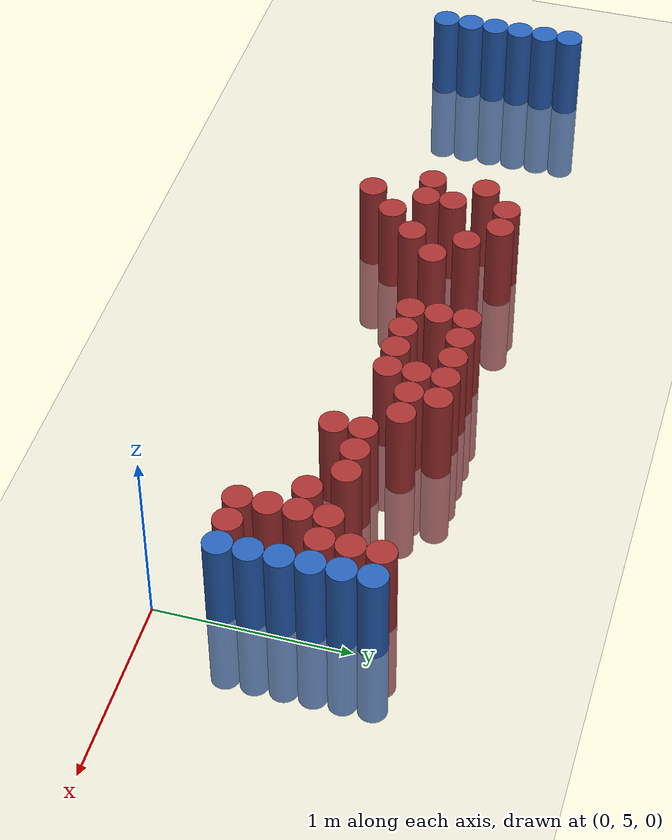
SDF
<sdf version="1.6">
 <world name="default">
  <model name="ground_plane">
   <static>1</static>
   <link name="link">
    <collision name="collision">
     <geometry><plane><normal>0 0 1</normal><size>100 100</size></plane></geometry>
     <surface><friction><ode><mu>100</mu><mu2>50</mu2></ode></friction></surface>
    </collision>
    <visual name="visual">
     <cast_shadows>0</cast_shadows>
     <geometry><plane><normal>0 0 1</normal><size>100 100</size></plane></geometry>
     <material>
      <script><uri>file://media/materials/scripts/gazebo.material</uri><name>Gazebo/Grey</name></script>
     </material>
    </visual>
   </link>
  </model>
  <model name="unit_cylinder_97">
   <static>1</static>
   <pose>-4.425000 5.325000 0.000000 0.000000 0.000000 0.000000</pose>
   <link name="link">
    <inertial>
     <mass>1</mass>
     <inertia><ixx>0.145833</ixx><ixy>0</ixy><ixz>0</ixz><iyy>0.145833</iyy><iyz>0</iyz><izz>0.125</izz></inertia>
    </inertial>
    <collision name="collision">
     <geometry><cylinder><radius>0.075000</radius><length>1</length></cylinder></geometry>
    </collision>
    <visual name="visual">
     <geometry><cylinder><radius>0.075000</radius><length>1</length></cylinder></geometry>
     <material>
      <ambient>0.152000 0.379000 0.720000 1</ambient>
      <diffuse>0.152000 0.379000 0.720000 1</diffuse>
     </material>
     <material>
      <script><name>Gazebo/Grey</name><uri>file://media/materials/scripts/gazebo.material</uri></script>
     </material>
    </visual>
   </link>
  </model>
  <model name="unit_cylinder_98">
   <static>1</static>
   <pose>-4.425000 5.475000 0.000000 0.000000 0.000000 0.000000</pose>
   <link name="link">
    <inertial>
     <mass>1</mass>
     <inertia><ixx>0.145833</ixx><ixy>0</ixy><ixz>0</ixz><iyy>0.145833</iyy><iyz>0</iyz><izz>0.125</izz></inertia>
    </inertial>
    <collision name="collision">
     <geometry><cylinder><radius>0.075000</radius><length>1</length></cylinder></geometry>
    </collision>
    <visual name="visual">
     <geometry><cylinder><radius>0.075000</radius><length>1</length></cylinder></geometry>
     <material>
      <ambient>0.152000 0.379000 0.720000 1</ambient>
      <diffuse>0.152000 0.379000 0.720000 1</diffuse>
     </material>
     <material>
      <script><name>Gazebo/Grey</name><uri>file://media/materials/scripts/gazebo.material</uri></script>
     </material>
    </visual>
   </link>
  </model>
  <model name="unit_cylinder_99">
   <static>1</static>
   <pose>-4.425000 5.625000 0.000000 0.000000 0.000000 0.000000</pose>
   <link name="link">
    <inertial>
     <mass>1</mass>
     <inertia><ixx>0.145833</ixx><ixy>0</ixy><ixz>0</ixz><iyy>0.145833</iyy><iyz>0</iyz><izz>0.125</izz></inertia>
    </inertial>
    <collision name="collision">
     <geometry><cylinder><radius>0.075000</radius><length>1</length></cylinder></geometry>
    </collision>
    <visual name="visual">
     <geometry><cylinder><radius>0.075000</radius><length>1</length></cylinder></geometry>
     <material>
      <ambient>0.152000 0.379000 0.720000 1</ambient>
      <diffuse>0.152000 0.379000 0.720000 1</diffuse>
     </material>
     <material>
      <script><name>Gazebo/Grey</name><uri>file://media/materials/scripts/gazebo.material</uri></script>
     </material>
    </visual>
   </link>
  </model>
  <model name="unit_cylinder_100">
   <static>1</static>
   <pose>-4.425000 5.775000 0.000000 0.000000 0.000000 0.000000</pose>
   <link name="link">
    <inertial>
     <mass>1</mass>
     <inertia><ixx>0.145833</ixx><ixy>0</ixy><ixz>0</ixz><iyy>0.145833</iyy><iyz>0</iyz><izz>0.125</izz></inertia>
    </inertial>
    <collision name="collision">
     <geometry><cylinder><radius>0.075000</radius><length>1</length></cylinder></geometry>
    </collision>
    <visual name="visual">
     <geometry><cylinder><radius>0.075000</radius><length>1</length></cylinder></geometry>
     <material>
      <ambient>0.152000 0.379000 0.720000 1</ambient>
      <diffuse>0.152000 0.379000 0.720000 1</diffuse>
     </material>
     <material>
      <script><name>Gazebo/Grey</name><uri>file://media/materials/scripts/gazebo.material</uri></script>
     </material>
    </visual>
   </link>
  </model>
  <model name="unit_cylinder_101">
   <static>1</static>
   <pose>-4.425000 5.925000 0.000000 0.000000 0.000000 0.000000</pose>
   <link name="link">
    <inertial>
     <mass>1</mass>
     <inertia><ixx>0.145833</ixx><ixy>0</ixy><ixz>0</ixz><iyy>0.145833</iyy><iyz>0</iyz><izz>0.125</izz></inertia>
    </inertial>
    <collision name="collision">
     <geometry><cylinder><radius>0.075000</radius><length>1</length></cylinder></geometry>
    </collision>
    <visual name="visual">
     <geometry><cylinder><radius>0.075000</radius><length>1</length></cylinder></geometry>
     <material>
      <ambient>0.152000 0.379000 0.720000 1</ambient>
      <diffuse>0.152000 0.379000 0.720000 1</diffuse>
     </material>
     <material>
      <script><name>Gazebo/Grey</name><uri>file://media/materials/scripts/gazebo.material</uri></script>
     </material>
    </visual>
   </link>
  </model>
  <model name="unit_cylinder_102">
   <static>1</static>
   <pose>-4.425000 6.075000 0.000000 0.000000 0.000000 0.000000</pose>
   <link name="link">
    <inertial>
     <mass>1</mass>
     <inertia><ixx>0.145833</ixx><ixy>0</ixy><ixz>0</ixz><iyy>0.145833</iyy><iyz>0</iyz><izz>0.125</izz></inertia>
    </inertial>
    <collision name="collision">
     <geometry><cylinder><radius>0.075000</radius><length>1</length></cylinder></geometry>
    </collision>
    <visual name="visual">
     <geometry><cylinder><radius>0.075000</radius><length>1</length></cylinder></geometry>
     <material>
      <ambient>0.152000 0.379000 0.720000 1</ambient>
      <diffuse>0.152000 0.379000 0.720000 1</diffuse>
     </material>
     <material>
      <script><name>Gazebo/Grey</name><uri>file://media/materials/scripts/gazebo.material</uri></script>
     </material>
    </visual>
   </link>
  </model>
  <model name="unit_cylinder_167">
   <static>1</static>
   <pose>-2.925000 5.625000 0.000000 0.000000 0.000000 0.000000</pose>
   <link name="link">
    <inertial>
     <mass>1</mass>
     <inertia><ixx>0.145833</ixx><ixy>0</ixy><ixz>0</ixz><iyy>0.145833</iyy><iyz>0</iyz><izz>0.125</izz></inertia>
    </inertial>
    <collision name="collision">
     <geometry><cylinder><radius>0.075000</radius><length>1</length></cylinder></geometry>
    </collision>
    <visual name="visual">
     <geometry><cylinder><radius>0.075000</radius><length>1</length></cylinder></geometry>
     <material>
      <ambient>0.648000 0.192000 0.192000 1</ambient>
      <diffuse>0.648000 0.192000 0.192000 1</diffuse>
     </material>
     <material>
      <script><name>Gazebo/Grey</name><uri>file://media/materials/scripts/gazebo.material</uri></script>
     </material>
    </visual>
   </link>
  </model>
  <model name="unit_cylinder_168">
   <static>1</static>
   <pose>-2.925000 5.925000 0.000000 0.000000 0.000000 0.000000</pose>
   <link name="link">
    <inertial>
     <mass>1</mass>
     <inertia><ixx>0.145833</ixx><ixy>0</ixy><ixz>0</ixz><iyy>0.145833</iyy><iyz>0</iyz><izz>0.125</izz></inertia>
    </inertial>
    <collision name="collision">
     <geometry><cylinder><radius>0.075000</radius><length>1</length></cylinder></geometry>
    </collision>
    <visual name="visual">
     <geometry><cylinder><radius>0.075000</radius><length>1</length></cylinder></geometry>
     <material>
      <ambient>0.648000 0.192000 0.192000 1</ambient>
      <diffuse>0.648000 0.192000 0.192000 1</diffuse>
     </material>
     <material>
      <script><name>Gazebo/Grey</name><uri>file://media/materials/scripts/gazebo.material</uri></script>
     </material>
    </visual>
   </link>
  </model>
  <model name="unit_cylinder_172">
   <static>1</static>
   <pose>-2.775000 5.325000 0.000000 0.000000 0.000000 0.000000</pose>
   <link name="link">
    <inertial>
     <mass>1</mass>
     <inertia><ixx>0.145833</ixx><ixy>0</ixy><ixz>0</ixz><iyy>0.145833</iyy><iyz>0</iyz><izz>0.125</izz></inertia>
    </inertial>
    <collision name="collision">
     <geometry><cylinder><radius>0.075000</radius><length>1</length></cylinder></geometry>
    </collision>
    <visual name="visual">
     <geometry><cylinder><radius>0.075000</radius><length>1</length></cylinder></geometry>
     <material>
      <ambient>0.648000 0.192000 0.192000 1</ambient>
      <diffuse>0.648000 0.192000 0.192000 1</diffuse>
     </material>
     <material>
      <script><name>Gazebo/Grey</name><uri>file://media/materials/scripts/gazebo.material</uri></script>
     </material>
    </visual>
   </link>
  </model>
  <model name="unit_cylinder_173">
   <static>1</static>
   <pose>-2.775000 5.625000 0.000000 0.000000 0.000000 0.000000</pose>
   <link name="link">
    <inertial>
     <mass>1</mass>
     <inertia><ixx>0.145833</ixx><ixy>0</ixy><ixz>0</ixz><iyy>0.145833</iyy><iyz>0</iyz><izz>0.125</izz></inertia>
    </inertial>
    <collision name="collision">
     <geometry><cylinder><radius>0.075000</radius><length>1</length></cylinder></geometry>
    </collision>
    <visual name="visual">
     <geometry><cylinder><radius>0.075000</radius><length>1</length></cylinder></geometry>
     <material>
      <ambient>0.648000 0.192000 0.192000 1</ambient>
      <diffuse>0.648000 0.192000 0.192000 1</diffuse>
     </material>
     <material>
      <script><name>Gazebo/Grey</name><uri>file://media/materials/scripts/gazebo.material</uri></script>
     </material>
    </visual>
   </link>
  </model>
  <model name="unit_cylinder_174">
   <static>1</static>
   <pose>-2.775000 5.775000 0.000000 0.000000 0.000000 0.000000</pose>
   <link name="link">
    <inertial>
     <mass>1</mass>
     <inertia><ixx>0.145833</ixx><ixy>0</ixy><ixz>0</ixz><iyy>0.145833</iyy><iyz>0</iyz><izz>0.125</izz></inertia>
    </inertial>
    <collision name="collision">
     <geometry><cylinder><radius>0.075000</radius><length>1</length></cylinder></geometry>
    </collision>
    <visual name="visual">
     <geometry><cylinder><radius>0.075000</radius><length>1</length></cylinder></geometry>
     <material>
      <ambient>0.648000 0.192000 0.192000 1</ambient>
      <diffuse>0.648000 0.192000 0.192000 1</diffuse>
     </material>
     <material>
      <script><name>Gazebo/Grey</name><uri>file://media/materials/scripts/gazebo.material</uri></script>
     </material>
    </visual>
   </link>
  </model>
  <model name="unit_cylinder_175">
   <static>1</static>
   <pose>-2.775000 6.075000 0.000000 0.000000 0.000000 0.000000</pose>
   <link name="link">
    <inertial>
     <mass>1</mass>
     <inertia><ixx>0.145833</ixx><ixy>0</ixy><ixz>0</ixz><iyy>0.145833</iyy><iyz>0</iyz><izz>0.125</izz></inertia>
    </inertial>
    <collision name="collision">
     <geometry><cylinder><radius>0.075000</radius><length>1</length></cylinder></geometry>
    </collision>
    <visual name="visual">
     <geometry><cylinder><radius>0.075000</radius><length>1</length></cylinder></geometry>
     <material>
      <ambient>0.648000 0.192000 0.192000 1</ambient>
      <diffuse>0.648000 0.192000 0.192000 1</diffuse>
     </material>
     <material>
      <script><name>Gazebo/Grey</name><uri>file://media/materials/scripts/gazebo.material</uri></script>
     </material>
    </visual>
   </link>
  </model>
  <model name="unit_cylinder_177">
   <static>1</static>
   <pose>-2.625000 5.475000 0.000000 0.000000 0.000000 0.000000</pose>
   <link name="link">
    <inertial>
     <mass>1</mass>
     <inertia><ixx>0.145833</ixx><ixy>0</ixy><ixz>0</ixz><iyy>0.145833</iyy><iyz>0</iyz><izz>0.125</izz></inertia>
    </inertial>
    <collision name="collision">
     <geometry><cylinder><radius>0.075000</radius><length>1</length></cylinder></geometry>
    </collision>
    <visual name="visual">
     <geometry><cylinder><radius>0.075000</radius><length>1</length></cylinder></geometry>
     <material>
      <ambient>0.648000 0.192000 0.192000 1</ambient>
      <diffuse>0.648000 0.192000 0.192000 1</diffuse>
     </material>
     <material>
      <script><name>Gazebo/Grey</name><uri>file://media/materials/scripts/gazebo.material</uri></script>
     </material>
    </visual>
   </link>
  </model>
  <model name="unit_cylinder_178">
   <static>1</static>
   <pose>-2.625000 6.075000 0.000000 0.000000 0.000000 0.000000</pose>
   <link name="link">
    <inertial>
     <mass>1</mass>
     <inertia><ixx>0.145833</ixx><ixy>0</ixy><ixz>0</ixz><iyy>0.145833</iyy><iyz>0</iyz><izz>0.125</izz></inertia>
    </inertial>
    <collision name="collision">
     <geometry><cylinder><radius>0.075000</radius><length>1</length></cylinder></geometry>
    </collision>
    <visual name="visual">
     <geometry><cylinder><radius>0.075000</radius><length>1</length></cylinder></geometry>
     <material>
      <ambient>0.648000 0.192000 0.192000 1</ambient>
      <diffuse>0.648000 0.192000 0.192000 1</diffuse>
     </material>
     <material>
      <script><name>Gazebo/Grey</name><uri>file://media/materials/scripts/gazebo.material</uri></script>
     </material>
    </visual>
   </link>
  </model>
  <model name="unit_cylinder_180">
   <static>1</static>
   <pose>-2.475000 5.625000 0.000000 0.000000 0.000000 0.000000</pose>
   <link name="link">
    <inertial>
     <mass>1</mass>
     <inertia><ixx>0.145833</ixx><ixy>0</ixy><ixz>0</ixz><iyy>0.145833</iyy><iyz>0</iyz><izz>0.125</izz></inertia>
    </inertial>
    <collision name="collision">
     <geometry><cylinder><radius>0.075000</radius><length>1</length></cylinder></geometry>
    </collision>
    <visual name="visual">
     <geometry><cylinder><radius>0.075000</radius><length>1</length></cylinder></geometry>
     <material>
      <ambient>0.648000 0.192000 0.192000 1</ambient>
      <diffuse>0.648000 0.192000 0.192000 1</diffuse>
     </material>
     <material>
      <script><name>Gazebo/Grey</name><uri>file://media/materials/scripts/gazebo.material</uri></script>
     </material>
    </visual>
   </link>
  </model>
  <model name="unit_cylinder_181">
   <static>1</static>
   <pose>-2.475000 5.925000 0.000000 0.000000 0.000000 0.000000</pose>
   <link name="link">
    <inertial>
     <mass>1</mass>
     <inertia><ixx>0.145833</ixx><ixy>0</ixy><ixz>0</ixz><iyy>0.145833</iyy><iyz>0</iyz><izz>0.125</izz></inertia>
    </inertial>
    <collision name="collision">
     <geometry><cylinder><radius>0.075000</radius><length>1</length></cylinder></geometry>
    </collision>
    <visual name="visual">
     <geometry><cylinder><radius>0.075000</radius><length>1</length></cylinder></geometry>
     <material>
      <ambient>0.648000 0.192000 0.192000 1</ambient>
      <diffuse>0.648000 0.192000 0.192000 1</diffuse>
     </material>
     <material>
      <script><name>Gazebo/Grey</name><uri>file://media/materials/scripts/gazebo.material</uri></script>
     </material>
    </visual>
   </link>
  </model>
  <model name="unit_cylinder_184">
   <static>1</static>
   <pose>-2.325000 5.775000 0.000000 0.000000 0.000000 0.000000</pose>
   <link name="link">
    <inertial>
     <mass>1</mass>
     <inertia><ixx>0.145833</ixx><ixy>0</ixy><ixz>0</ixz><iyy>0.145833</iyy><iyz>0</iyz><izz>0.125</izz></inertia>
    </inertial>
    <collision name="collision">
     <geometry><cylinder><radius>0.075000</radius><length>1</length></cylinder></geometry>
    </collision>
    <visual name="visual">
     <geometry><cylinder><radius>0.075000</radius><length>1</length></cylinder></geometry>
     <material>
      <ambient>0.648000 0.192000 0.192000 1</ambient>
      <diffuse>0.648000 0.192000 0.192000 1</diffuse>
     </material>
     <material>
      <script><name>Gazebo/Grey</name><uri>file://media/materials/scripts/gazebo.material</uri></script>
     </material>
    </visual>
   </link>
  </model>
  <model name="unit_cylinder_195">
   <static>1</static>
   <pose>-1.875000 5.775000 0.000000 0.000000 0.000000 0.000000</pose>
   <link name="link">
    <inertial>
     <mass>1</mass>
     <inertia><ixx>0.145833</ixx><ixy>0</ixy><ixz>0</ixz><iyy>0.145833</iyy><iyz>0</iyz><izz>0.125</izz></inertia>
    </inertial>
    <collision name="collision">
     <geometry><cylinder><radius>0.075000</radius><length>1</length></cylinder></geometry>
    </collision>
    <visual name="visual">
     <geometry><cylinder><radius>0.075000</radius><length>1</length></cylinder></geometry>
     <material>
      <ambient>0.648000 0.192000 0.192000 1</ambient>
      <diffuse>0.648000 0.192000 0.192000 1</diffuse>
     </material>
     <material>
      <script><name>Gazebo/Grey</name><uri>file://media/materials/scripts/gazebo.material</uri></script>
     </material>
    </visual>
   </link>
  </model>
  <model name="unit_cylinder_196">
   <static>1</static>
   <pose>-1.875000 5.925000 0.000000 0.000000 0.000000 0.000000</pose>
   <link name="link">
    <inertial>
     <mass>1</mass>
     <inertia><ixx>0.145833</ixx><ixy>0</ixy><ixz>0</ixz><iyy>0.145833</iyy><iyz>0</iyz><izz>0.125</izz></inertia>
    </inertial>
    <collision name="collision">
     <geometry><cylinder><radius>0.075000</radius><length>1</length></cylinder></geometry>
    </collision>
    <visual name="visual">
     <geometry><cylinder><radius>0.075000</radius><length>1</length></cylinder></geometry>
     <material>
      <ambient>0.648000 0.192000 0.192000 1</ambient>
      <diffuse>0.648000 0.192000 0.192000 1</diffuse>
     </material>
     <material>
      <script><name>Gazebo/Grey</name><uri>file://media/materials/scripts/gazebo.material</uri></script>
     </material>
    </visual>
   </link>
  </model>
  <model name="unit_cylinder_197">
   <static>1</static>
   <pose>-1.875000 6.075000 0.000000 0.000000 0.000000 0.000000</pose>
   <link name="link">
    <inertial>
     <mass>1</mass>
     <inertia><ixx>0.145833</ixx><ixy>0</ixy><ixz>0</ixz><iyy>0.145833</iyy><iyz>0</iyz><izz>0.125</izz></inertia>
    </inertial>
    <collision name="collision">
     <geometry><cylinder><radius>0.075000</radius><length>1</length></cylinder></geometry>
    </collision>
    <visual name="visual">
     <geometry><cylinder><radius>0.075000</radius><length>1</length></cylinder></geometry>
     <material>
      <ambient>0.648000 0.192000 0.192000 1</ambient>
      <diffuse>0.648000 0.192000 0.192000 1</diffuse>
     </material>
     <material>
      <script><name>Gazebo/Grey</name><uri>file://media/materials/scripts/gazebo.material</uri></script>
     </material>
    </visual>
   </link>
  </model>
  <model name="unit_cylinder_203">
   <static>1</static>
   <pose>-1.725000 5.775000 0.000000 0.000000 0.000000 0.000000</pose>
   <link name="link">
    <inertial>
     <mass>1</mass>
     <inertia><ixx>0.145833</ixx><ixy>0</ixy><ixz>0</ixz><iyy>0.145833</iyy><iyz>0</iyz><izz>0.125</izz></inertia>
    </inertial>
    <collision name="collision">
     <geometry><cylinder><radius>0.075000</radius><length>1</length></cylinder></geometry>
    </collision>
    <visual name="visual">
     <geometry><cylinder><radius>0.075000</radius><length>1</length></cylinder></geometry>
     <material>
      <ambient>0.648000 0.192000 0.192000 1</ambient>
      <diffuse>0.648000 0.192000 0.192000 1</diffuse>
     </material>
     <material>
      <script><name>Gazebo/Grey</name><uri>file://media/materials/scripts/gazebo.material</uri></script>
     </material>
    </visual>
   </link>
  </model>
  <model name="unit_cylinder_204">
   <static>1</static>
   <pose>-1.725000 6.075000 0.000000 0.000000 0.000000 0.000000</pose>
   <link name="link">
    <inertial>
     <mass>1</mass>
     <inertia><ixx>0.145833</ixx><ixy>0</ixy><ixz>0</ixz><iyy>0.145833</iyy><iyz>0</iyz><izz>0.125</izz></inertia>
    </inertial>
    <collision name="collision">
     <geometry><cylinder><radius>0.075000</radius><length>1</length></cylinder></geometry>
    </collision>
    <visual name="visual">
     <geometry><cylinder><radius>0.075000</radius><length>1</length></cylinder></geometry>
     <material>
      <ambient>0.648000 0.192000 0.192000 1</ambient>
      <diffuse>0.648000 0.192000 0.192000 1</diffuse>
     </material>
     <material>
      <script><name>Gazebo/Grey</name><uri>file://media/materials/scripts/gazebo.material</uri></script>
     </material>
    </visual>
   </link>
  </model>
  <model name="unit_cylinder_209">
   <static>1</static>
   <pose>-1.575000 5.775000 0.000000 0.000000 0.000000 0.000000</pose>
   <link name="link">
    <inertial>
     <mass>1</mass>
     <inertia><ixx>0.145833</ixx><ixy>0</ixy><ixz>0</ixz><iyy>0.145833</iyy><iyz>0</iyz><izz>0.125</izz></inertia>
    </inertial>
    <collision name="collision">
     <geometry><cylinder><radius>0.075000</radius><length>1</length></cylinder></geometry>
    </collision>
    <visual name="visual">
     <geometry><cylinder><radius>0.075000</radius><length>1</length></cylinder></geometry>
     <material>
      <ambient>0.648000 0.192000 0.192000 1</ambient>
      <diffuse>0.648000 0.192000 0.192000 1</diffuse>
     </material>
     <material>
      <script><name>Gazebo/Grey</name><uri>file://media/materials/scripts/gazebo.material</uri></script>
     </material>
    </visual>
   </link>
  </model>
  <model name="unit_cylinder_210">
   <static>1</static>
   <pose>-1.575000 6.075000 0.000000 0.000000 0.000000 0.000000</pose>
   <link name="link">
    <inertial>
     <mass>1</mass>
     <inertia><ixx>0.145833</ixx><ixy>0</ixy><ixz>0</ixz><iyy>0.145833</iyy><iyz>0</iyz><izz>0.125</izz></inertia>
    </inertial>
    <collision name="collision">
     <geometry><cylinder><radius>0.075000</radius><length>1</length></cylinder></geometry>
    </collision>
    <visual name="visual">
     <geometry><cylinder><radius>0.075000</radius><length>1</length></cylinder></geometry>
     <material>
      <ambient>0.648000 0.192000 0.192000 1</ambient>
      <diffuse>0.648000 0.192000 0.192000 1</diffuse>
     </material>
     <material>
      <script><name>Gazebo/Grey</name><uri>file://media/materials/scripts/gazebo.material</uri></script>
     </material>
    </visual>
   </link>
  </model>
  <model name="unit_cylinder_215">
   <static>1</static>
   <pose>-1.425000 5.775000 0.000000 0.000000 0.000000 0.000000</pose>
   <link name="link">
    <inertial>
     <mass>1</mass>
     <inertia><ixx>0.145833</ixx><ixy>0</ixy><ixz>0</ixz><iyy>0.145833</iyy><iyz>0</iyz><izz>0.125</izz></inertia>
    </inertial>
    <collision name="collision">
     <geometry><cylinder><radius>0.075000</radius><length>1</length></cylinder></geometry>
    </collision>
    <visual name="visual">
     <geometry><cylinder><radius>0.075000</radius><length>1</length></cylinder></geometry>
     <material>
      <ambient>0.648000 0.192000 0.192000 1</ambient>
      <diffuse>0.648000 0.192000 0.192000 1</diffuse>
     </material>
     <material>
      <script><name>Gazebo/Grey</name><uri>file://media/materials/scripts/gazebo.material</uri></script>
     </material>
    </visual>
   </link>
  </model>
  <model name="unit_cylinder_216">
   <static>1</static>
   <pose>-1.425000 5.925000 0.000000 0.000000 0.000000 0.000000</pose>
   <link name="link">
    <inertial>
     <mass>1</mass>
     <inertia><ixx>0.145833</ixx><ixy>0</ixy><ixz>0</ixz><iyy>0.145833</iyy><iyz>0</iyz><izz>0.125</izz></inertia>
    </inertial>
    <collision name="collision">
     <geometry><cylinder><radius>0.075000</radius><length>1</length></cylinder></geometry>
    </collision>
    <visual name="visual">
     <geometry><cylinder><radius>0.075000</radius><length>1</length></cylinder></geometry>
     <material>
      <ambient>0.648000 0.192000 0.192000 1</ambient>
      <diffuse>0.648000 0.192000 0.192000 1</diffuse>
     </material>
     <material>
      <script><name>Gazebo/Grey</name><uri>file://media/materials/scripts/gazebo.material</uri></script>
     </material>
    </visual>
   </link>
  </model>
  <model name="unit_cylinder_217">
   <static>1</static>
   <pose>-1.425000 6.075000 0.000000 0.000000 0.000000 0.000000</pose>
   <link name="link">
    <inertial>
     <mass>1</mass>
     <inertia><ixx>0.145833</ixx><ixy>0</ixy><ixz>0</ixz><iyy>0.145833</iyy><iyz>0</iyz><izz>0.125</izz></inertia>
    </inertial>
    <collision name="collision">
     <geometry><cylinder><radius>0.075000</radius><length>1</length></cylinder></geometry>
    </collision>
    <visual name="visual">
     <geometry><cylinder><radius>0.075000</radius><length>1</length></cylinder></geometry>
     <material>
      <ambient>0.648000 0.192000 0.192000 1</ambient>
      <diffuse>0.648000 0.192000 0.192000 1</diffuse>
     </material>
     <material>
      <script><name>Gazebo/Grey</name><uri>file://media/materials/scripts/gazebo.material</uri></script>
     </material>
    </visual>
   </link>
  </model>
  <model name="unit_cylinder_226">
   <static>1</static>
   <pose>-1.275000 5.925000 0.000000 0.000000 0.000000 0.000000</pose>
   <link name="link">
    <inertial>
     <mass>1</mass>
     <inertia><ixx>0.145833</ixx><ixy>0</ixy><ixz>0</ixz><iyy>0.145833</iyy><iyz>0</iyz><izz>0.125</izz></inertia>
    </inertial>
    <collision name="collision">
     <geometry><cylinder><radius>0.075000</radius><length>1</length></cylinder></geometry>
    </collision>
    <visual name="visual">
     <geometry><cylinder><radius>0.075000</radius><length>1</length></cylinder></geometry>
     <material>
      <ambient>0.648000 0.192000 0.192000 1</ambient>
      <diffuse>0.648000 0.192000 0.192000 1</diffuse>
     </material>
     <material>
      <script><name>Gazebo/Grey</name><uri>file://media/materials/scripts/gazebo.material</uri></script>
     </material>
    </visual>
   </link>
  </model>
  <model name="unit_cylinder_227">
   <static>1</static>
   <pose>-1.275000 6.075000 0.000000 0.000000 0.000000 0.000000</pose>
   <link name="link">
    <inertial>
     <mass>1</mass>
     <inertia><ixx>0.145833</ixx><ixy>0</ixy><ixz>0</ixz><iyy>0.145833</iyy><iyz>0</iyz><izz>0.125</izz></inertia>
    </inertial>
    <collision name="collision">
     <geometry><cylinder><radius>0.075000</radius><length>1</length></cylinder></geometry>
    </collision>
    <visual name="visual">
     <geometry><cylinder><radius>0.075000</radius><length>1</length></cylinder></geometry>
     <material>
      <ambient>0.648000 0.192000 0.192000 1</ambient>
      <diffuse>0.648000 0.192000 0.192000 1</diffuse>
     </material>
     <material>
      <script><name>Gazebo/Grey</name><uri>file://media/materials/scripts/gazebo.material</uri></script>
     </material>
    </visual>
   </link>
  </model>
  <model name="unit_cylinder_238">
   <static>1</static>
   <pose>-1.125000 5.925000 0.000000 0.000000 0.000000 0.000000</pose>
   <link name="link">
    <inertial>
     <mass>1</mass>
     <inertia><ixx>0.145833</ixx><ixy>0</ixy><ixz>0</ixz><iyy>0.145833</iyy><iyz>0</iyz><izz>0.125</izz></inertia>
    </inertial>
    <collision name="collision">
     <geometry><cylinder><radius>0.075000</radius><length>1</length></cylinder></geometry>
    </collision>
    <visual name="visual">
     <geometry><cylinder><radius>0.075000</radius><length>1</length></cylinder></geometry>
     <material>
      <ambient>0.648000 0.192000 0.192000 1</ambient>
      <diffuse>0.648000 0.192000 0.192000 1</diffuse>
     </material>
     <material>
      <script><name>Gazebo/Grey</name><uri>file://media/materials/scripts/gazebo.material</uri></script>
     </material>
    </visual>
   </link>
  </model>
  <model name="unit_cylinder_248">
   <static>1</static>
   <pose>-0.975000 5.625000 0.000000 0.000000 0.000000 0.000000</pose>
   <link name="link">
    <inertial>
     <mass>1</mass>
     <inertia><ixx>0.145833</ixx><ixy>0</ixy><ixz>0</ixz><iyy>0.145833</iyy><iyz>0</iyz><izz>0.125</izz></inertia>
    </inertial>
    <collision name="collision">
     <geometry><cylinder><radius>0.075000</radius><length>1</length></cylinder></geometry>
    </collision>
    <visual name="visual">
     <geometry><cylinder><radius>0.075000</radius><length>1</length></cylinder></geometry>
     <material>
      <ambient>0.648000 0.192000 0.192000 1</ambient>
      <diffuse>0.648000 0.192000 0.192000 1</diffuse>
     </material>
     <material>
      <script><name>Gazebo/Grey</name><uri>file://media/materials/scripts/gazebo.material</uri></script>
     </material>
    </visual>
   </link>
  </model>
  <model name="unit_cylinder_249">
   <static>1</static>
   <pose>-0.975000 5.775000 0.000000 0.000000 0.000000 0.000000</pose>
   <link name="link">
    <inertial>
     <mass>1</mass>
     <inertia><ixx>0.145833</ixx><ixy>0</ixy><ixz>0</ixz><iyy>0.145833</iyy><iyz>0</iyz><izz>0.125</izz></inertia>
    </inertial>
    <collision name="collision">
     <geometry><cylinder><radius>0.075000</radius><length>1</length></cylinder></geometry>
    </collision>
    <visual name="visual">
     <geometry><cylinder><radius>0.075000</radius><length>1</length></cylinder></geometry>
     <material>
      <ambient>0.648000 0.192000 0.192000 1</ambient>
      <diffuse>0.648000 0.192000 0.192000 1</diffuse>
     </material>
     <material>
      <script><name>Gazebo/Grey</name><uri>file://media/materials/scripts/gazebo.material</uri></script>
     </material>
    </visual>
   </link>
  </model>
  <model name="unit_cylinder_257">
   <static>1</static>
   <pose>-0.825000 5.775000 0.000000 0.000000 0.000000 0.000000</pose>
   <link name="link">
    <inertial>
     <mass>1</mass>
     <inertia><ixx>0.145833</ixx><ixy>0</ixy><ixz>0</ixz><iyy>0.145833</iyy><iyz>0</iyz><izz>0.125</izz></inertia>
    </inertial>
    <collision name="collision">
     <geometry><cylinder><radius>0.075000</radius><length>1</length></cylinder></geometry>
    </collision>
    <visual name="visual">
     <geometry><cylinder><radius>0.075000</radius><length>1</length></cylinder></geometry>
     <material>
      <ambient>0.648000 0.192000 0.192000 1</ambient>
      <diffuse>0.648000 0.192000 0.192000 1</diffuse>
     </material>
     <material>
      <script><name>Gazebo/Grey</name><uri>file://media/materials/scripts/gazebo.material</uri></script>
     </material>
    </visual>
   </link>
  </model>
  <model name="unit_cylinder_264">
   <static>1</static>
   <pose>-0.675000 5.775000 0.000000 0.000000 0.000000 0.000000</pose>
   <link name="link">
    <inertial>
     <mass>1</mass>
     <inertia><ixx>0.145833</ixx><ixy>0</ixy><ixz>0</ixz><iyy>0.145833</iyy><iyz>0</iyz><izz>0.125</izz></inertia>
    </inertial>
    <collision name="collision">
     <geometry><cylinder><radius>0.075000</radius><length>1</length></cylinder></geometry>
    </collision>
    <visual name="visual">
     <geometry><cylinder><radius>0.075000</radius><length>1</length></cylinder></geometry>
     <material>
      <ambient>0.648000 0.192000 0.192000 1</ambient>
      <diffuse>0.648000 0.192000 0.192000 1</diffuse>
     </material>
     <material>
      <script><name>Gazebo/Grey</name><uri>file://media/materials/scripts/gazebo.material</uri></script>
     </material>
    </visual>
   </link>
  </model>
  <model name="unit_cylinder_270">
   <static>1</static>
   <pose>-0.525000 5.625000 0.000000 0.000000 0.000000 0.000000</pose>
   <link name="link">
    <inertial>
     <mass>1</mass>
     <inertia><ixx>0.145833</ixx><ixy>0</ixy><ixz>0</ixz><iyy>0.145833</iyy><iyz>0</iyz><izz>0.125</izz></inertia>
    </inertial>
    <collision name="collision">
     <geometry><cylinder><radius>0.075000</radius><length>1</length></cylinder></geometry>
    </collision>
    <visual name="visual">
     <geometry><cylinder><radius>0.075000</radius><length>1</length></cylinder></geometry>
     <material>
      <ambient>0.648000 0.192000 0.192000 1</ambient>
      <diffuse>0.648000 0.192000 0.192000 1</diffuse>
     </material>
     <material>
      <script><name>Gazebo/Grey</name><uri>file://media/materials/scripts/gazebo.material</uri></script>
     </material>
    </visual>
   </link>
  </model>
  <model name="unit_cylinder_276">
   <static>1</static>
   <pose>-0.375000 5.325000 0.000000 0.000000 0.000000 0.000000</pose>
   <link name="link">
    <inertial>
     <mass>1</mass>
     <inertia><ixx>0.145833</ixx><ixy>0</ixy><ixz>0</ixz><iyy>0.145833</iyy><iyz>0</iyz><izz>0.125</izz></inertia>
    </inertial>
    <collision name="collision">
     <geometry><cylinder><radius>0.075000</radius><length>1</length></cylinder></geometry>
    </collision>
    <visual name="visual">
     <geometry><cylinder><radius>0.075000</radius><length>1</length></cylinder></geometry>
     <material>
      <ambient>0.648000 0.192000 0.192000 1</ambient>
      <diffuse>0.648000 0.192000 0.192000 1</diffuse>
     </material>
     <material>
      <script><name>Gazebo/Grey</name><uri>file://media/materials/scripts/gazebo.material</uri></script>
     </material>
    </visual>
   </link>
  </model>
  <model name="unit_cylinder_277">
   <static>1</static>
   <pose>-0.375000 5.475000 0.000000 0.000000 0.000000 0.000000</pose>
   <link name="link">
    <inertial>
     <mass>1</mass>
     <inertia><ixx>0.145833</ixx><ixy>0</ixy><ixz>0</ixz><iyy>0.145833</iyy><iyz>0</iyz><izz>0.125</izz></inertia>
    </inertial>
    <collision name="collision">
     <geometry><cylinder><radius>0.075000</radius><length>1</length></cylinder></geometry>
    </collision>
    <visual name="visual">
     <geometry><cylinder><radius>0.075000</radius><length>1</length></cylinder></geometry>
     <material>
      <ambient>0.648000 0.192000 0.192000 1</ambient>
      <diffuse>0.648000 0.192000 0.192000 1</diffuse>
     </material>
     <material>
      <script><name>Gazebo/Grey</name><uri>file://media/materials/scripts/gazebo.material</uri></script>
     </material>
    </visual>
   </link>
  </model>
  <model name="unit_cylinder_278">
   <static>1</static>
   <pose>-0.375000 5.625000 0.000000 0.000000 0.000000 0.000000</pose>
   <link name="link">
    <inertial>
     <mass>1</mass>
     <inertia><ixx>0.145833</ixx><ixy>0</ixy><ixz>0</ixz><iyy>0.145833</iyy><iyz>0</iyz><izz>0.125</izz></inertia>
    </inertial>
    <collision name="collision">
     <geometry><cylinder><radius>0.075000</radius><length>1</length></cylinder></geometry>
    </collision>
    <visual name="visual">
     <geometry><cylinder><radius>0.075000</radius><length>1</length></cylinder></geometry>
     <material>
      <ambient>0.648000 0.192000 0.192000 1</ambient>
      <diffuse>0.648000 0.192000 0.192000 1</diffuse>
     </material>
     <material>
      <script><name>Gazebo/Grey</name><uri>file://media/materials/scripts/gazebo.material</uri></script>
     </material>
    </visual>
   </link>
  </model>
  <model name="unit_cylinder_279">
   <static>1</static>
   <pose>-0.375000 5.775000 0.000000 0.000000 0.000000 0.000000</pose>
   <link name="link">
    <inertial>
     <mass>1</mass>
     <inertia><ixx>0.145833</ixx><ixy>0</ixy><ixz>0</ixz><iyy>0.145833</iyy><iyz>0</iyz><izz>0.125</izz></inertia>
    </inertial>
    <collision name="collision">
     <geometry><cylinder><radius>0.075000</radius><length>1</length></cylinder></geometry>
    </collision>
    <visual name="visual">
     <geometry><cylinder><radius>0.075000</radius><length>1</length></cylinder></geometry>
     <material>
      <ambient>0.648000 0.192000 0.192000 1</ambient>
      <diffuse>0.648000 0.192000 0.192000 1</diffuse>
     </material>
     <material>
      <script><name>Gazebo/Grey</name><uri>file://media/materials/scripts/gazebo.material</uri></script>
     </material>
    </visual>
   </link>
  </model>
  <model name="unit_cylinder_290">
   <static>1</static>
   <pose>-0.225000 5.325000 0.000000 0.000000 0.000000 0.000000</pose>
   <link name="link">
    <inertial>
     <mass>1</mass>
     <inertia><ixx>0.145833</ixx><ixy>0</ixy><ixz>0</ixz><iyy>0.145833</iyy><iyz>0</iyz><izz>0.125</izz></inertia>
    </inertial>
    <collision name="collision">
     <geometry><cylinder><radius>0.075000</radius><length>1</length></cylinder></geometry>
    </collision>
    <visual name="visual">
     <geometry><cylinder><radius>0.075000</radius><length>1</length></cylinder></geometry>
     <material>
      <ambient>0.648000 0.192000 0.192000 1</ambient>
      <diffuse>0.648000 0.192000 0.192000 1</diffuse>
     </material>
     <material>
      <script><name>Gazebo/Grey</name><uri>file://media/materials/scripts/gazebo.material</uri></script>
     </material>
    </visual>
   </link>
  </model>
  <model name="unit_cylinder_291">
   <static>1</static>
   <pose>-0.225000 5.775000 0.000000 0.000000 0.000000 0.000000</pose>
   <link name="link">
    <inertial>
     <mass>1</mass>
     <inertia><ixx>0.145833</ixx><ixy>0</ixy><ixz>0</ixz><iyy>0.145833</iyy><iyz>0</iyz><izz>0.125</izz></inertia>
    </inertial>
    <collision name="collision">
     <geometry><cylinder><radius>0.075000</radius><length>1</length></cylinder></geometry>
    </collision>
    <visual name="visual">
     <geometry><cylinder><radius>0.075000</radius><length>1</length></cylinder></geometry>
     <material>
      <ambient>0.648000 0.192000 0.192000 1</ambient>
      <diffuse>0.648000 0.192000 0.192000 1</diffuse>
     </material>
     <material>
      <script><name>Gazebo/Grey</name><uri>file://media/materials/scripts/gazebo.material</uri></script>
     </material>
    </visual>
   </link>
  </model>
  <model name="unit_cylinder_292">
   <static>1</static>
   <pose>-0.225000 5.925000 0.000000 0.000000 0.000000 0.000000</pose>
   <link name="link">
    <inertial>
     <mass>1</mass>
     <inertia><ixx>0.145833</ixx><ixy>0</ixy><ixz>0</ixz><iyy>0.145833</iyy><iyz>0</iyz><izz>0.125</izz></inertia>
    </inertial>
    <collision name="collision">
     <geometry><cylinder><radius>0.075000</radius><length>1</length></cylinder></geometry>
    </collision>
    <visual name="visual">
     <geometry><cylinder><radius>0.075000</radius><length>1</length></cylinder></geometry>
     <material>
      <ambient>0.648000 0.192000 0.192000 1</ambient>
      <diffuse>0.648000 0.192000 0.192000 1</diffuse>
     </material>
     <material>
      <script><name>Gazebo/Grey</name><uri>file://media/materials/scripts/gazebo.material</uri></script>
     </material>
    </visual>
   </link>
  </model>
  <model name="unit_cylinder_293">
   <static>1</static>
   <pose>-0.225000 6.075000 0.000000 0.000000 0.000000 0.000000</pose>
   <link name="link">
    <inertial>
     <mass>1</mass>
     <inertia><ixx>0.145833</ixx><ixy>0</ixy><ixz>0</ixz><iyy>0.145833</iyy><iyz>0</iyz><izz>0.125</izz></inertia>
    </inertial>
    <collision name="collision">
     <geometry><cylinder><radius>0.075000</radius><length>1</length></cylinder></geometry>
    </collision>
    <visual name="visual">
     <geometry><cylinder><radius>0.075000</radius><length>1</length></cylinder></geometry>
     <material>
      <ambient>0.648000 0.192000 0.192000 1</ambient>
      <diffuse>0.648000 0.192000 0.192000 1</diffuse>
     </material>
     <material>
      <script><name>Gazebo/Grey</name><uri>file://media/materials/scripts/gazebo.material</uri></script>
     </material>
    </visual>
   </link>
  </model>
  <model name="unit_cylinder_318">
   <static>1</static>
   <pose>-0.075000 5.325000 0.000000 0.000000 0.000000 0.000000</pose>
   <link name="link">
    <inertial>
     <mass>1</mass>
     <inertia><ixx>0.145833</ixx><ixy>0</ixy><ixz>0</ixz><iyy>0.145833</iyy><iyz>0</iyz><izz>0.125</izz></inertia>
    </inertial>
    <collision name="collision">
     <geometry><cylinder><radius>0.075000</radius><length>1</length></cylinder></geometry>
    </collision>
    <visual name="visual">
     <geometry><cylinder><radius>0.075000</radius><length>1</length></cylinder></geometry>
     <material>
      <ambient>0.152000 0.379000 0.720000 1</ambient>
      <diffuse>0.152000 0.379000 0.720000 1</diffuse>
     </material>
     <material>
      <script><name>Gazebo/Grey</name><uri>file://media/materials/scripts/gazebo.material</uri></script>
     </material>
    </visual>
   </link>
  </model>
  <model name="unit_cylinder_319">
   <static>1</static>
   <pose>-0.075000 5.475000 0.000000 0.000000 0.000000 0.000000</pose>
   <link name="link">
    <inertial>
     <mass>1</mass>
     <inertia><ixx>0.145833</ixx><ixy>0</ixy><ixz>0</ixz><iyy>0.145833</iyy><iyz>0</iyz><izz>0.125</izz></inertia>
    </inertial>
    <collision name="collision">
     <geometry><cylinder><radius>0.075000</radius><length>1</length></cylinder></geometry>
    </collision>
    <visual name="visual">
     <geometry><cylinder><radius>0.075000</radius><length>1</length></cylinder></geometry>
     <material>
      <ambient>0.152000 0.379000 0.720000 1</ambient>
      <diffuse>0.152000 0.379000 0.720000 1</diffuse>
     </material>
     <material>
      <script><name>Gazebo/Grey</name><uri>file://media/materials/scripts/gazebo.material</uri></script>
     </material>
    </visual>
   </link>
  </model>
  <model name="unit_cylinder_320">
   <static>1</static>
   <pose>-0.075000 5.625000 0.000000 0.000000 0.000000 0.000000</pose>
   <link name="link">
    <inertial>
     <mass>1</mass>
     <inertia><ixx>0.145833</ixx><ixy>0</ixy><ixz>0</ixz><iyy>0.145833</iyy><iyz>0</iyz><izz>0.125</izz></inertia>
    </inertial>
    <collision name="collision">
     <geometry><cylinder><radius>0.075000</radius><length>1</length></cylinder></geometry>
    </collision>
    <visual name="visual">
     <geometry><cylinder><radius>0.075000</radius><length>1</length></cylinder></geometry>
     <material>
      <ambient>0.152000 0.379000 0.720000 1</ambient>
      <diffuse>0.152000 0.379000 0.720000 1</diffuse>
     </material>
     <material>
      <script><name>Gazebo/Grey</name><uri>file://media/materials/scripts/gazebo.material</uri></script>
     </material>
    </visual>
   </link>
  </model>
  <model name="unit_cylinder_321">
   <static>1</static>
   <pose>-0.075000 5.775000 0.000000 0.000000 0.000000 0.000000</pose>
   <link name="link">
    <inertial>
     <mass>1</mass>
     <inertia><ixx>0.145833</ixx><ixy>0</ixy><ixz>0</ixz><iyy>0.145833</iyy><iyz>0</iyz><izz>0.125</izz></inertia>
    </inertial>
    <collision name="collision">
     <geometry><cylinder><radius>0.075000</radius><length>1</length></cylinder></geometry>
    </collision>
    <visual name="visual">
     <geometry><cylinder><radius>0.075000</radius><length>1</length></cylinder></geometry>
     <material>
      <ambient>0.152000 0.379000 0.720000 1</ambient>
      <diffuse>0.152000 0.379000 0.720000 1</diffuse>
     </material>
     <material>
      <script><name>Gazebo/Grey</name><uri>file://media/materials/scripts/gazebo.material</uri></script>
     </material>
    </visual>
   </link>
  </model>
  <model name="unit_cylinder_322">
   <static>1</static>
   <pose>-0.075000 5.925000 0.000000 0.000000 0.000000 0.000000</pose>
   <link name="link">
    <inertial>
     <mass>1</mass>
     <inertia><ixx>0.145833</ixx><ixy>0</ixy><ixz>0</ixz><iyy>0.145833</iyy><iyz>0</iyz><izz>0.125</izz></inertia>
    </inertial>
    <collision name="collision">
     <geometry><cylinder><radius>0.075000</radius><length>1</length></cylinder></geometry>
    </collision>
    <visual name="visual">
     <geometry><cylinder><radius>0.075000</radius><length>1</length></cylinder></geometry>
     <material>
      <ambient>0.152000 0.379000 0.720000 1</ambient>
      <diffuse>0.152000 0.379000 0.720000 1</diffuse>
     </material>
     <material>
      <script><name>Gazebo/Grey</name><uri>file://media/materials/scripts/gazebo.material</uri></script>
     </material>
    </visual>
   </link>
  </model>
  <model name="unit_cylinder_323">
   <static>1</static>
   <pose>-0.075000 6.075000 0.000000 0.000000 0.000000 0.000000</pose>
   <link name="link">
    <inertial>
     <mass>1</mass>
     <inertia><ixx>0.145833</ixx><ixy>0</ixy><ixz>0</ixz><iyy>0.145833</iyy><iyz>0</iyz><izz>0.125</izz></inertia>
    </inertial>
    <collision name="collision">
     <geometry><cylinder><radius>0.075000</radius><length>1</length></cylinder></geometry>
    </collision>
    <visual name="visual">
     <geometry><cylinder><radius>0.075000</radius><length>1</length></cylinder></geometry>
     <material>
      <ambient>0.152000 0.379000 0.720000 1</ambient>
      <diffuse>0.152000 0.379000 0.720000 1</diffuse>
     </material>
     <material>
      <script><name>Gazebo/Grey</name><uri>file://media/materials/scripts/gazebo.material</uri></script>
     </material>
    </visual>
   </link>
  </model>
 </world>
</sdf>
